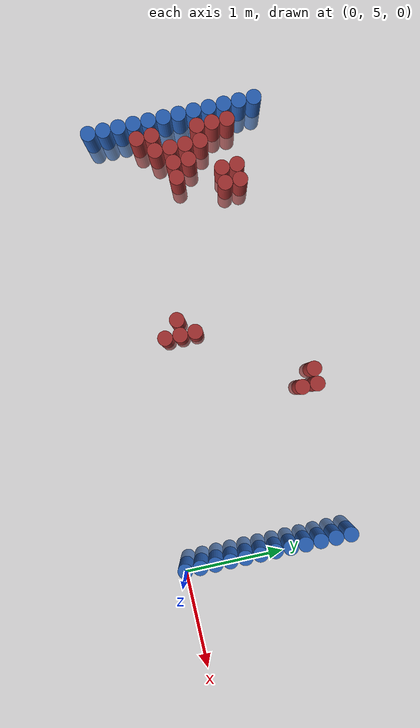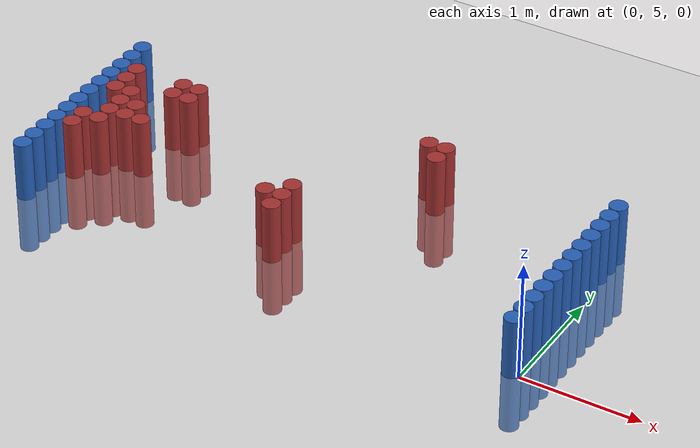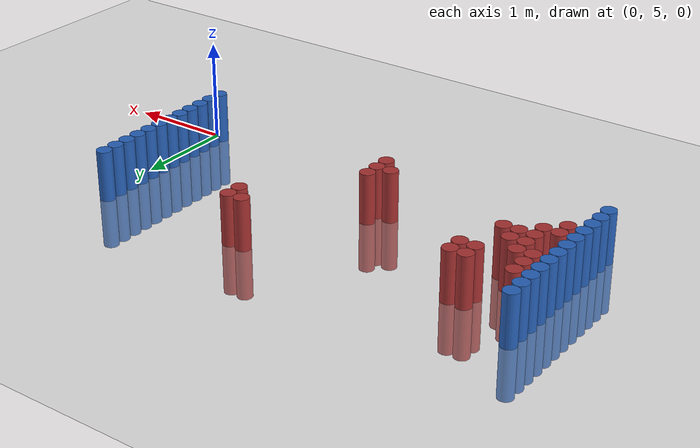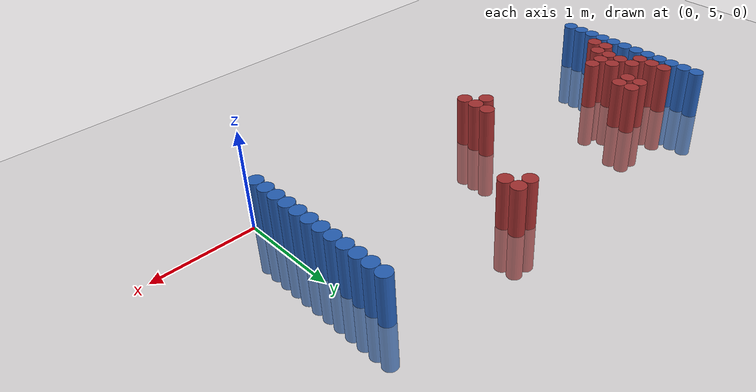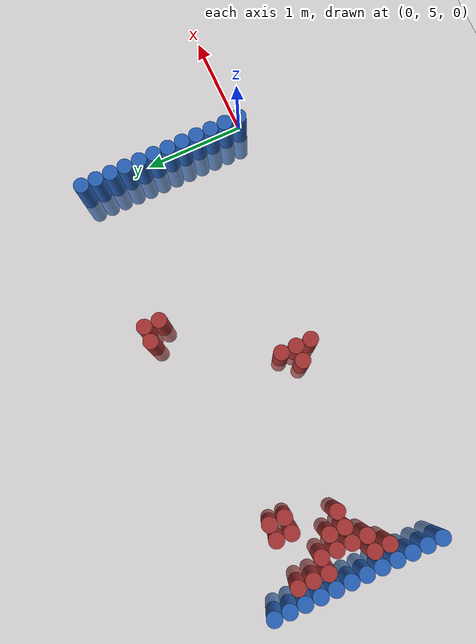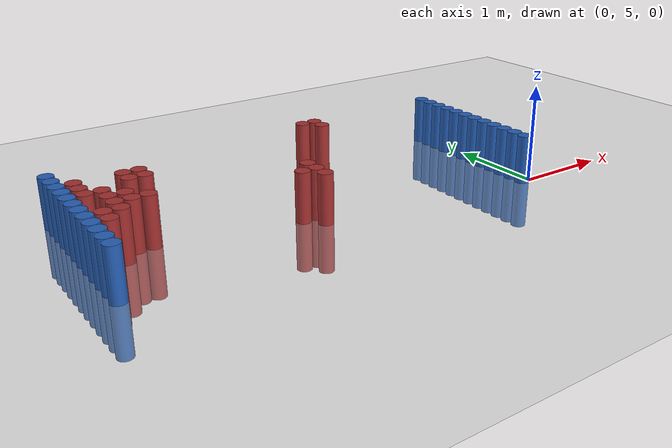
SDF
<sdf version="1.6">
 <world name="default">
  <model name="ground_plane">
   <static>1</static>
   <link name="link">
    <collision name="collision">
     <geometry><plane><normal>0 0 1</normal><size>100 100</size></plane></geometry>
     <surface><friction><ode><mu>100</mu><mu2>50</mu2></ode></friction></surface>
    </collision>
    <visual name="visual">
     <cast_shadows>0</cast_shadows>
     <geometry><plane><normal>0 0 1</normal><size>100 100</size></plane></geometry>
     <material>
      <script><uri>file://media/materials/scripts/gazebo.material</uri><name>Gazebo/Grey</name></script>
     </material>
    </visual>
   </link>
  </model>
  <model name="unit_cylinder_94">
   <static>1</static>
   <pose>-0.075000 5.025000 0.000000 0.000000 0.000000 0.000000</pose>
   <link name="link">
    <inertial>
     <mass>1</mass>
     <inertia><ixx>0.145833</ixx><ixy>0</ixy><ixz>0</ixz><iyy>0.145833</iyy><iyz>0</iyz><izz>0.125</izz></inertia>
    </inertial>
    <collision name="collision">
     <geometry><cylinder><radius>0.075000</radius><length>1</length></cylinder></geometry>
    </collision>
    <visual name="visual">
     <geometry><cylinder><radius>0.075000</radius><length>1</length></cylinder></geometry>
     <material>
      <ambient>0.152000 0.379000 0.720000 1</ambient>
      <diffuse>0.152000 0.379000 0.720000 1</diffuse>
     </material>
     <material>
      <script><name>Gazebo/Grey</name><uri>file://media/materials/scripts/gazebo.material</uri></script>
     </material>
    </visual>
   </link>
  </model>
  <model name="unit_cylinder_95">
   <static>1</static>
   <pose>-4.425000 5.025000 0.000000 0.000000 0.000000 0.000000</pose>
   <link name="link">
    <inertial>
     <mass>1</mass>
     <inertia><ixx>0.145833</ixx><ixy>0</ixy><ixz>0</ixz><iyy>0.145833</iyy><iyz>0</iyz><izz>0.125</izz></inertia>
    </inertial>
    <collision name="collision">
     <geometry><cylinder><radius>0.075000</radius><length>1</length></cylinder></geometry>
    </collision>
    <visual name="visual">
     <geometry><cylinder><radius>0.075000</radius><length>1</length></cylinder></geometry>
     <material>
      <ambient>0.152000 0.379000 0.720000 1</ambient>
      <diffuse>0.152000 0.379000 0.720000 1</diffuse>
     </material>
     <material>
      <script><name>Gazebo/Grey</name><uri>file://media/materials/scripts/gazebo.material</uri></script>
     </material>
    </visual>
   </link>
  </model>
  <model name="unit_cylinder_96">
   <static>1</static>
   <pose>-4.425000 5.175000 0.000000 0.000000 0.000000 0.000000</pose>
   <link name="link">
    <inertial>
     <mass>1</mass>
     <inertia><ixx>0.145833</ixx><ixy>0</ixy><ixz>0</ixz><iyy>0.145833</iyy><iyz>0</iyz><izz>0.125</izz></inertia>
    </inertial>
    <collision name="collision">
     <geometry><cylinder><radius>0.075000</radius><length>1</length></cylinder></geometry>
    </collision>
    <visual name="visual">
     <geometry><cylinder><radius>0.075000</radius><length>1</length></cylinder></geometry>
     <material>
      <ambient>0.152000 0.379000 0.720000 1</ambient>
      <diffuse>0.152000 0.379000 0.720000 1</diffuse>
     </material>
     <material>
      <script><name>Gazebo/Grey</name><uri>file://media/materials/scripts/gazebo.material</uri></script>
     </material>
    </visual>
   </link>
  </model>
  <model name="unit_cylinder_97">
   <static>1</static>
   <pose>-4.425000 5.325000 0.000000 0.000000 0.000000 0.000000</pose>
   <link name="link">
    <inertial>
     <mass>1</mass>
     <inertia><ixx>0.145833</ixx><ixy>0</ixy><ixz>0</ixz><iyy>0.145833</iyy><iyz>0</iyz><izz>0.125</izz></inertia>
    </inertial>
    <collision name="collision">
     <geometry><cylinder><radius>0.075000</radius><length>1</length></cylinder></geometry>
    </collision>
    <visual name="visual">
     <geometry><cylinder><radius>0.075000</radius><length>1</length></cylinder></geometry>
     <material>
      <ambient>0.152000 0.379000 0.720000 1</ambient>
      <diffuse>0.152000 0.379000 0.720000 1</diffuse>
     </material>
     <material>
      <script><name>Gazebo/Grey</name><uri>file://media/materials/scripts/gazebo.material</uri></script>
     </material>
    </visual>
   </link>
  </model>
  <model name="unit_cylinder_98">
   <static>1</static>
   <pose>-4.425000 5.475000 0.000000 0.000000 0.000000 0.000000</pose>
   <link name="link">
    <inertial>
     <mass>1</mass>
     <inertia><ixx>0.145833</ixx><ixy>0</ixy><ixz>0</ixz><iyy>0.145833</iyy><iyz>0</iyz><izz>0.125</izz></inertia>
    </inertial>
    <collision name="collision">
     <geometry><cylinder><radius>0.075000</radius><length>1</length></cylinder></geometry>
    </collision>
    <visual name="visual">
     <geometry><cylinder><radius>0.075000</radius><length>1</length></cylinder></geometry>
     <material>
      <ambient>0.152000 0.379000 0.720000 1</ambient>
      <diffuse>0.152000 0.379000 0.720000 1</diffuse>
     </material>
     <material>
      <script><name>Gazebo/Grey</name><uri>file://media/materials/scripts/gazebo.material</uri></script>
     </material>
    </visual>
   </link>
  </model>
  <model name="unit_cylinder_99">
   <static>1</static>
   <pose>-4.425000 5.625000 0.000000 0.000000 0.000000 0.000000</pose>
   <link name="link">
    <inertial>
     <mass>1</mass>
     <inertia><ixx>0.145833</ixx><ixy>0</ixy><ixz>0</ixz><iyy>0.145833</iyy><iyz>0</iyz><izz>0.125</izz></inertia>
    </inertial>
    <collision name="collision">
     <geometry><cylinder><radius>0.075000</radius><length>1</length></cylinder></geometry>
    </collision>
    <visual name="visual">
     <geometry><cylinder><radius>0.075000</radius><length>1</length></cylinder></geometry>
     <material>
      <ambient>0.152000 0.379000 0.720000 1</ambient>
      <diffuse>0.152000 0.379000 0.720000 1</diffuse>
     </material>
     <material>
      <script><name>Gazebo/Grey</name><uri>file://media/materials/scripts/gazebo.material</uri></script>
     </material>
    </visual>
   </link>
  </model>
  <model name="unit_cylinder_100">
   <static>1</static>
   <pose>-4.425000 5.775000 0.000000 0.000000 0.000000 0.000000</pose>
   <link name="link">
    <inertial>
     <mass>1</mass>
     <inertia><ixx>0.145833</ixx><ixy>0</ixy><ixz>0</ixz><iyy>0.145833</iyy><iyz>0</iyz><izz>0.125</izz></inertia>
    </inertial>
    <collision name="collision">
     <geometry><cylinder><radius>0.075000</radius><length>1</length></cylinder></geometry>
    </collision>
    <visual name="visual">
     <geometry><cylinder><radius>0.075000</radius><length>1</length></cylinder></geometry>
     <material>
      <ambient>0.152000 0.379000 0.720000 1</ambient>
      <diffuse>0.152000 0.379000 0.720000 1</diffuse>
     </material>
     <material>
      <script><name>Gazebo/Grey</name><uri>file://media/materials/scripts/gazebo.material</uri></script>
     </material>
    </visual>
   </link>
  </model>
  <model name="unit_cylinder_101">
   <static>1</static>
   <pose>-4.425000 5.925000 0.000000 0.000000 0.000000 0.000000</pose>
   <link name="link">
    <inertial>
     <mass>1</mass>
     <inertia><ixx>0.145833</ixx><ixy>0</ixy><ixz>0</ixz><iyy>0.145833</iyy><iyz>0</iyz><izz>0.125</izz></inertia>
    </inertial>
    <collision name="collision">
     <geometry><cylinder><radius>0.075000</radius><length>1</length></cylinder></geometry>
    </collision>
    <visual name="visual">
     <geometry><cylinder><radius>0.075000</radius><length>1</length></cylinder></geometry>
     <material>
      <ambient>0.152000 0.379000 0.720000 1</ambient>
      <diffuse>0.152000 0.379000 0.720000 1</diffuse>
     </material>
     <material>
      <script><name>Gazebo/Grey</name><uri>file://media/materials/scripts/gazebo.material</uri></script>
     </material>
    </visual>
   </link>
  </model>
  <model name="unit_cylinder_102">
   <static>1</static>
   <pose>-4.425000 6.075000 0.000000 0.000000 0.000000 0.000000</pose>
   <link name="link">
    <inertial>
     <mass>1</mass>
     <inertia><ixx>0.145833</ixx><ixy>0</ixy><ixz>0</ixz><iyy>0.145833</iyy><iyz>0</iyz><izz>0.125</izz></inertia>
    </inertial>
    <collision name="collision">
     <geometry><cylinder><radius>0.075000</radius><length>1</length></cylinder></geometry>
    </collision>
    <visual name="visual">
     <geometry><cylinder><radius>0.075000</radius><length>1</length></cylinder></geometry>
     <material>
      <ambient>0.152000 0.379000 0.720000 1</ambient>
      <diffuse>0.152000 0.379000 0.720000 1</diffuse>
     </material>
     <material>
      <script><name>Gazebo/Grey</name><uri>file://media/materials/scripts/gazebo.material</uri></script>
     </material>
    </visual>
   </link>
  </model>
  <model name="unit_cylinder_103">
   <static>1</static>
   <pose>-4.425000 6.225000 0.000000 0.000000 0.000000 0.000000</pose>
   <link name="link">
    <inertial>
     <mass>1</mass>
     <inertia><ixx>0.145833</ixx><ixy>0</ixy><ixz>0</ixz><iyy>0.145833</iyy><iyz>0</iyz><izz>0.125</izz></inertia>
    </inertial>
    <collision name="collision">
     <geometry><cylinder><radius>0.075000</radius><length>1</length></cylinder></geometry>
    </collision>
    <visual name="visual">
     <geometry><cylinder><radius>0.075000</radius><length>1</length></cylinder></geometry>
     <material>
      <ambient>0.152000 0.379000 0.720000 1</ambient>
      <diffuse>0.152000 0.379000 0.720000 1</diffuse>
     </material>
     <material>
      <script><name>Gazebo/Grey</name><uri>file://media/materials/scripts/gazebo.material</uri></script>
     </material>
    </visual>
   </link>
  </model>
  <model name="unit_cylinder_104">
   <static>1</static>
   <pose>-4.425000 6.375000 0.000000 0.000000 0.000000 0.000000</pose>
   <link name="link">
    <inertial>
     <mass>1</mass>
     <inertia><ixx>0.145833</ixx><ixy>0</ixy><ixz>0</ixz><iyy>0.145833</iyy><iyz>0</iyz><izz>0.125</izz></inertia>
    </inertial>
    <collision name="collision">
     <geometry><cylinder><radius>0.075000</radius><length>1</length></cylinder></geometry>
    </collision>
    <visual name="visual">
     <geometry><cylinder><radius>0.075000</radius><length>1</length></cylinder></geometry>
     <material>
      <ambient>0.152000 0.379000 0.720000 1</ambient>
      <diffuse>0.152000 0.379000 0.720000 1</diffuse>
     </material>
     <material>
      <script><name>Gazebo/Grey</name><uri>file://media/materials/scripts/gazebo.material</uri></script>
     </material>
    </visual>
   </link>
  </model>
  <model name="unit_cylinder_105">
   <static>1</static>
   <pose>-4.425000 6.525000 0.000000 0.000000 0.000000 0.000000</pose>
   <link name="link">
    <inertial>
     <mass>1</mass>
     <inertia><ixx>0.145833</ixx><ixy>0</ixy><ixz>0</ixz><iyy>0.145833</iyy><iyz>0</iyz><izz>0.125</izz></inertia>
    </inertial>
    <collision name="collision">
     <geometry><cylinder><radius>0.075000</radius><length>1</length></cylinder></geometry>
    </collision>
    <visual name="visual">
     <geometry><cylinder><radius>0.075000</radius><length>1</length></cylinder></geometry>
     <material>
      <ambient>0.152000 0.379000 0.720000 1</ambient>
      <diffuse>0.152000 0.379000 0.720000 1</diffuse>
     </material>
     <material>
      <script><name>Gazebo/Grey</name><uri>file://media/materials/scripts/gazebo.material</uri></script>
     </material>
    </visual>
   </link>
  </model>
  <model name="unit_cylinder_106">
   <static>1</static>
   <pose>-4.425000 6.675000 0.000000 0.000000 0.000000 0.000000</pose>
   <link name="link">
    <inertial>
     <mass>1</mass>
     <inertia><ixx>0.145833</ixx><ixy>0</ixy><ixz>0</ixz><iyy>0.145833</iyy><iyz>0</iyz><izz>0.125</izz></inertia>
    </inertial>
    <collision name="collision">
     <geometry><cylinder><radius>0.075000</radius><length>1</length></cylinder></geometry>
    </collision>
    <visual name="visual">
     <geometry><cylinder><radius>0.075000</radius><length>1</length></cylinder></geometry>
     <material>
      <ambient>0.152000 0.379000 0.720000 1</ambient>
      <diffuse>0.152000 0.379000 0.720000 1</diffuse>
     </material>
     <material>
      <script><name>Gazebo/Grey</name><uri>file://media/materials/scripts/gazebo.material</uri></script>
     </material>
    </visual>
   </link>
  </model>
  <model name="unit_cylinder_126">
   <static>1</static>
   <pose>-4.275000 5.475000 0.000000 0.000000 0.000000 0.000000</pose>
   <link name="link">
    <inertial>
     <mass>1</mass>
     <inertia><ixx>0.145833</ixx><ixy>0</ixy><ixz>0</ixz><iyy>0.145833</iyy><iyz>0</iyz><izz>0.125</izz></inertia>
    </inertial>
    <collision name="collision">
     <geometry><cylinder><radius>0.075000</radius><length>1</length></cylinder></geometry>
    </collision>
    <visual name="visual">
     <geometry><cylinder><radius>0.075000</radius><length>1</length></cylinder></geometry>
     <material>
      <ambient>0.648000 0.192000 0.192000 1</ambient>
      <diffuse>0.648000 0.192000 0.192000 1</diffuse>
     </material>
     <material>
      <script><name>Gazebo/Grey</name><uri>file://media/materials/scripts/gazebo.material</uri></script>
     </material>
    </visual>
   </link>
  </model>
  <model name="unit_cylinder_127">
   <static>1</static>
   <pose>-4.275000 5.625000 0.000000 0.000000 0.000000 0.000000</pose>
   <link name="link">
    <inertial>
     <mass>1</mass>
     <inertia><ixx>0.145833</ixx><ixy>0</ixy><ixz>0</ixz><iyy>0.145833</iyy><iyz>0</iyz><izz>0.125</izz></inertia>
    </inertial>
    <collision name="collision">
     <geometry><cylinder><radius>0.075000</radius><length>1</length></cylinder></geometry>
    </collision>
    <visual name="visual">
     <geometry><cylinder><radius>0.075000</radius><length>1</length></cylinder></geometry>
     <material>
      <ambient>0.648000 0.192000 0.192000 1</ambient>
      <diffuse>0.648000 0.192000 0.192000 1</diffuse>
     </material>
     <material>
      <script><name>Gazebo/Grey</name><uri>file://media/materials/scripts/gazebo.material</uri></script>
     </material>
    </visual>
   </link>
  </model>
  <model name="unit_cylinder_128">
   <static>1</static>
   <pose>-4.275000 6.075000 0.000000 0.000000 0.000000 0.000000</pose>
   <link name="link">
    <inertial>
     <mass>1</mass>
     <inertia><ixx>0.145833</ixx><ixy>0</ixy><ixz>0</ixz><iyy>0.145833</iyy><iyz>0</iyz><izz>0.125</izz></inertia>
    </inertial>
    <collision name="collision">
     <geometry><cylinder><radius>0.075000</radius><length>1</length></cylinder></geometry>
    </collision>
    <visual name="visual">
     <geometry><cylinder><radius>0.075000</radius><length>1</length></cylinder></geometry>
     <material>
      <ambient>0.648000 0.192000 0.192000 1</ambient>
      <diffuse>0.648000 0.192000 0.192000 1</diffuse>
     </material>
     <material>
      <script><name>Gazebo/Grey</name><uri>file://media/materials/scripts/gazebo.material</uri></script>
     </material>
    </visual>
   </link>
  </model>
  <model name="unit_cylinder_129">
   <static>1</static>
   <pose>-4.275000 6.225000 0.000000 0.000000 0.000000 0.000000</pose>
   <link name="link">
    <inertial>
     <mass>1</mass>
     <inertia><ixx>0.145833</ixx><ixy>0</ixy><ixz>0</ixz><iyy>0.145833</iyy><iyz>0</iyz><izz>0.125</izz></inertia>
    </inertial>
    <collision name="collision">
     <geometry><cylinder><radius>0.075000</radius><length>1</length></cylinder></geometry>
    </collision>
    <visual name="visual">
     <geometry><cylinder><radius>0.075000</radius><length>1</length></cylinder></geometry>
     <material>
      <ambient>0.648000 0.192000 0.192000 1</ambient>
      <diffuse>0.648000 0.192000 0.192000 1</diffuse>
     </material>
     <material>
      <script><name>Gazebo/Grey</name><uri>file://media/materials/scripts/gazebo.material</uri></script>
     </material>
    </visual>
   </link>
  </model>
  <model name="unit_cylinder_130">
   <static>1</static>
   <pose>-4.275000 6.375000 0.000000 0.000000 0.000000 0.000000</pose>
   <link name="link">
    <inertial>
     <mass>1</mass>
     <inertia><ixx>0.145833</ixx><ixy>0</ixy><ixz>0</ixz><iyy>0.145833</iyy><iyz>0</iyz><izz>0.125</izz></inertia>
    </inertial>
    <collision name="collision">
     <geometry><cylinder><radius>0.075000</radius><length>1</length></cylinder></geometry>
    </collision>
    <visual name="visual">
     <geometry><cylinder><radius>0.075000</radius><length>1</length></cylinder></geometry>
     <material>
      <ambient>0.648000 0.192000 0.192000 1</ambient>
      <diffuse>0.648000 0.192000 0.192000 1</diffuse>
     </material>
     <material>
      <script><name>Gazebo/Grey</name><uri>file://media/materials/scripts/gazebo.material</uri></script>
     </material>
    </visual>
   </link>
  </model>
  <model name="unit_cylinder_144">
   <static>1</static>
   <pose>-4.125000 5.625000 0.000000 0.000000 0.000000 0.000000</pose>
   <link name="link">
    <inertial>
     <mass>1</mass>
     <inertia><ixx>0.145833</ixx><ixy>0</ixy><ixz>0</ixz><iyy>0.145833</iyy><iyz>0</iyz><izz>0.125</izz></inertia>
    </inertial>
    <collision name="collision">
     <geometry><cylinder><radius>0.075000</radius><length>1</length></cylinder></geometry>
    </collision>
    <visual name="visual">
     <geometry><cylinder><radius>0.075000</radius><length>1</length></cylinder></geometry>
     <material>
      <ambient>0.648000 0.192000 0.192000 1</ambient>
      <diffuse>0.648000 0.192000 0.192000 1</diffuse>
     </material>
     <material>
      <script><name>Gazebo/Grey</name><uri>file://media/materials/scripts/gazebo.material</uri></script>
     </material>
    </visual>
   </link>
  </model>
  <model name="unit_cylinder_145">
   <static>1</static>
   <pose>-4.125000 5.775000 0.000000 0.000000 0.000000 0.000000</pose>
   <link name="link">
    <inertial>
     <mass>1</mass>
     <inertia><ixx>0.145833</ixx><ixy>0</ixy><ixz>0</ixz><iyy>0.145833</iyy><iyz>0</iyz><izz>0.125</izz></inertia>
    </inertial>
    <collision name="collision">
     <geometry><cylinder><radius>0.075000</radius><length>1</length></cylinder></geometry>
    </collision>
    <visual name="visual">
     <geometry><cylinder><radius>0.075000</radius><length>1</length></cylinder></geometry>
     <material>
      <ambient>0.648000 0.192000 0.192000 1</ambient>
      <diffuse>0.648000 0.192000 0.192000 1</diffuse>
     </material>
     <material>
      <script><name>Gazebo/Grey</name><uri>file://media/materials/scripts/gazebo.material</uri></script>
     </material>
    </visual>
   </link>
  </model>
  <model name="unit_cylinder_146">
   <static>1</static>
   <pose>-4.125000 5.925000 0.000000 0.000000 0.000000 0.000000</pose>
   <link name="link">
    <inertial>
     <mass>1</mass>
     <inertia><ixx>0.145833</ixx><ixy>0</ixy><ixz>0</ixz><iyy>0.145833</iyy><iyz>0</iyz><izz>0.125</izz></inertia>
    </inertial>
    <collision name="collision">
     <geometry><cylinder><radius>0.075000</radius><length>1</length></cylinder></geometry>
    </collision>
    <visual name="visual">
     <geometry><cylinder><radius>0.075000</radius><length>1</length></cylinder></geometry>
     <material>
      <ambient>0.648000 0.192000 0.192000 1</ambient>
      <diffuse>0.648000 0.192000 0.192000 1</diffuse>
     </material>
     <material>
      <script><name>Gazebo/Grey</name><uri>file://media/materials/scripts/gazebo.material</uri></script>
     </material>
    </visual>
   </link>
  </model>
  <model name="unit_cylinder_147">
   <static>1</static>
   <pose>-4.125000 6.075000 0.000000 0.000000 0.000000 0.000000</pose>
   <link name="link">
    <inertial>
     <mass>1</mass>
     <inertia><ixx>0.145833</ixx><ixy>0</ixy><ixz>0</ixz><iyy>0.145833</iyy><iyz>0</iyz><izz>0.125</izz></inertia>
    </inertial>
    <collision name="collision">
     <geometry><cylinder><radius>0.075000</radius><length>1</length></cylinder></geometry>
    </collision>
    <visual name="visual">
     <geometry><cylinder><radius>0.075000</radius><length>1</length></cylinder></geometry>
     <material>
      <ambient>0.648000 0.192000 0.192000 1</ambient>
      <diffuse>0.648000 0.192000 0.192000 1</diffuse>
     </material>
     <material>
      <script><name>Gazebo/Grey</name><uri>file://media/materials/scripts/gazebo.material</uri></script>
     </material>
    </visual>
   </link>
  </model>
  <model name="unit_cylinder_149">
   <static>1</static>
   <pose>-3.975000 5.775000 0.000000 0.000000 0.000000 0.000000</pose>
   <link name="link">
    <inertial>
     <mass>1</mass>
     <inertia><ixx>0.145833</ixx><ixy>0</ixy><ixz>0</ixz><iyy>0.145833</iyy><iyz>0</iyz><izz>0.125</izz></inertia>
    </inertial>
    <collision name="collision">
     <geometry><cylinder><radius>0.075000</radius><length>1</length></cylinder></geometry>
    </collision>
    <visual name="visual">
     <geometry><cylinder><radius>0.075000</radius><length>1</length></cylinder></geometry>
     <material>
      <ambient>0.648000 0.192000 0.192000 1</ambient>
      <diffuse>0.648000 0.192000 0.192000 1</diffuse>
     </material>
     <material>
      <script><name>Gazebo/Grey</name><uri>file://media/materials/scripts/gazebo.material</uri></script>
     </material>
    </visual>
   </link>
  </model>
  <model name="unit_cylinder_150">
   <static>1</static>
   <pose>-3.975000 5.925000 0.000000 0.000000 0.000000 0.000000</pose>
   <link name="link">
    <inertial>
     <mass>1</mass>
     <inertia><ixx>0.145833</ixx><ixy>0</ixy><ixz>0</ixz><iyy>0.145833</iyy><iyz>0</iyz><izz>0.125</izz></inertia>
    </inertial>
    <collision name="collision">
     <geometry><cylinder><radius>0.075000</radius><length>1</length></cylinder></geometry>
    </collision>
    <visual name="visual">
     <geometry><cylinder><radius>0.075000</radius><length>1</length></cylinder></geometry>
     <material>
      <ambient>0.648000 0.192000 0.192000 1</ambient>
      <diffuse>0.648000 0.192000 0.192000 1</diffuse>
     </material>
     <material>
      <script><name>Gazebo/Grey</name><uri>file://media/materials/scripts/gazebo.material</uri></script>
     </material>
    </visual>
   </link>
  </model>
  <model name="unit_cylinder_151">
   <static>1</static>
   <pose>-3.825000 5.775000 0.000000 0.000000 0.000000 0.000000</pose>
   <link name="link">
    <inertial>
     <mass>1</mass>
     <inertia><ixx>0.145833</ixx><ixy>0</ixy><ixz>0</ixz><iyy>0.145833</iyy><iyz>0</iyz><izz>0.125</izz></inertia>
    </inertial>
    <collision name="collision">
     <geometry><cylinder><radius>0.075000</radius><length>1</length></cylinder></geometry>
    </collision>
    <visual name="visual">
     <geometry><cylinder><radius>0.075000</radius><length>1</length></cylinder></geometry>
     <material>
      <ambient>0.648000 0.192000 0.192000 1</ambient>
      <diffuse>0.648000 0.192000 0.192000 1</diffuse>
     </material>
     <material>
      <script><name>Gazebo/Grey</name><uri>file://media/materials/scripts/gazebo.material</uri></script>
     </material>
    </visual>
   </link>
  </model>
  <model name="unit_cylinder_152">
   <static>1</static>
   <pose>-3.825000 6.225000 0.000000 0.000000 0.000000 0.000000</pose>
   <link name="link">
    <inertial>
     <mass>1</mass>
     <inertia><ixx>0.145833</ixx><ixy>0</ixy><ixz>0</ixz><iyy>0.145833</iyy><iyz>0</iyz><izz>0.125</izz></inertia>
    </inertial>
    <collision name="collision">
     <geometry><cylinder><radius>0.075000</radius><length>1</length></cylinder></geometry>
    </collision>
    <visual name="visual">
     <geometry><cylinder><radius>0.075000</radius><length>1</length></cylinder></geometry>
     <material>
      <ambient>0.648000 0.192000 0.192000 1</ambient>
      <diffuse>0.648000 0.192000 0.192000 1</diffuse>
     </material>
     <material>
      <script><name>Gazebo/Grey</name><uri>file://media/materials/scripts/gazebo.material</uri></script>
     </material>
    </visual>
   </link>
  </model>
  <model name="unit_cylinder_153">
   <static>1</static>
   <pose>-3.825000 6.375000 0.000000 0.000000 0.000000 0.000000</pose>
   <link name="link">
    <inertial>
     <mass>1</mass>
     <inertia><ixx>0.145833</ixx><ixy>0</ixy><ixz>0</ixz><iyy>0.145833</iyy><iyz>0</iyz><izz>0.125</izz></inertia>
    </inertial>
    <collision name="collision">
     <geometry><cylinder><radius>0.075000</radius><length>1</length></cylinder></geometry>
    </collision>
    <visual name="visual">
     <geometry><cylinder><radius>0.075000</radius><length>1</length></cylinder></geometry>
     <material>
      <ambient>0.648000 0.192000 0.192000 1</ambient>
      <diffuse>0.648000 0.192000 0.192000 1</diffuse>
     </material>
     <material>
      <script><name>Gazebo/Grey</name><uri>file://media/materials/scripts/gazebo.material</uri></script>
     </material>
    </visual>
   </link>
  </model>
  <model name="unit_cylinder_154">
   <static>1</static>
   <pose>-3.675000 6.225000 0.000000 0.000000 0.000000 0.000000</pose>
   <link name="link">
    <inertial>
     <mass>1</mass>
     <inertia><ixx>0.145833</ixx><ixy>0</ixy><ixz>0</ixz><iyy>0.145833</iyy><iyz>0</iyz><izz>0.125</izz></inertia>
    </inertial>
    <collision name="collision">
     <geometry><cylinder><radius>0.075000</radius><length>1</length></cylinder></geometry>
    </collision>
    <visual name="visual">
     <geometry><cylinder><radius>0.075000</radius><length>1</length></cylinder></geometry>
     <material>
      <ambient>0.648000 0.192000 0.192000 1</ambient>
      <diffuse>0.648000 0.192000 0.192000 1</diffuse>
     </material>
     <material>
      <script><name>Gazebo/Grey</name><uri>file://media/materials/scripts/gazebo.material</uri></script>
     </material>
    </visual>
   </link>
  </model>
  <model name="unit_cylinder_155">
   <static>1</static>
   <pose>-3.675000 6.375000 0.000000 0.000000 0.000000 0.000000</pose>
   <link name="link">
    <inertial>
     <mass>1</mass>
     <inertia><ixx>0.145833</ixx><ixy>0</ixy><ixz>0</ixz><iyy>0.145833</iyy><iyz>0</iyz><izz>0.125</izz></inertia>
    </inertial>
    <collision name="collision">
     <geometry><cylinder><radius>0.075000</radius><length>1</length></cylinder></geometry>
    </collision>
    <visual name="visual">
     <geometry><cylinder><radius>0.075000</radius><length>1</length></cylinder></geometry>
     <material>
      <ambient>0.648000 0.192000 0.192000 1</ambient>
      <diffuse>0.648000 0.192000 0.192000 1</diffuse>
     </material>
     <material>
      <script><name>Gazebo/Grey</name><uri>file://media/materials/scripts/gazebo.material</uri></script>
     </material>
    </visual>
   </link>
  </model>
  <model name="unit_cylinder_162">
   <static>1</static>
   <pose>-2.475000 5.475000 0.000000 0.000000 0.000000 0.000000</pose>
   <link name="link">
    <inertial>
     <mass>1</mass>
     <inertia><ixx>0.145833</ixx><ixy>0</ixy><ixz>0</ixz><iyy>0.145833</iyy><iyz>0</iyz><izz>0.125</izz></inertia>
    </inertial>
    <collision name="collision">
     <geometry><cylinder><radius>0.075000</radius><length>1</length></cylinder></geometry>
    </collision>
    <visual name="visual">
     <geometry><cylinder><radius>0.075000</radius><length>1</length></cylinder></geometry>
     <material>
      <ambient>0.648000 0.192000 0.192000 1</ambient>
      <diffuse>0.648000 0.192000 0.192000 1</diffuse>
     </material>
     <material>
      <script><name>Gazebo/Grey</name><uri>file://media/materials/scripts/gazebo.material</uri></script>
     </material>
    </visual>
   </link>
  </model>
  <model name="unit_cylinder_163">
   <static>1</static>
   <pose>-2.325000 5.325000 0.000000 0.000000 0.000000 0.000000</pose>
   <link name="link">
    <inertial>
     <mass>1</mass>
     <inertia><ixx>0.145833</ixx><ixy>0</ixy><ixz>0</ixz><iyy>0.145833</iyy><iyz>0</iyz><izz>0.125</izz></inertia>
    </inertial>
    <collision name="collision">
     <geometry><cylinder><radius>0.075000</radius><length>1</length></cylinder></geometry>
    </collision>
    <visual name="visual">
     <geometry><cylinder><radius>0.075000</radius><length>1</length></cylinder></geometry>
     <material>
      <ambient>0.648000 0.192000 0.192000 1</ambient>
      <diffuse>0.648000 0.192000 0.192000 1</diffuse>
     </material>
     <material>
      <script><name>Gazebo/Grey</name><uri>file://media/materials/scripts/gazebo.material</uri></script>
     </material>
    </visual>
   </link>
  </model>
  <model name="unit_cylinder_164">
   <static>1</static>
   <pose>-2.325000 5.475000 0.000000 0.000000 0.000000 0.000000</pose>
   <link name="link">
    <inertial>
     <mass>1</mass>
     <inertia><ixx>0.145833</ixx><ixy>0</ixy><ixz>0</ixz><iyy>0.145833</iyy><iyz>0</iyz><izz>0.125</izz></inertia>
    </inertial>
    <collision name="collision">
     <geometry><cylinder><radius>0.075000</radius><length>1</length></cylinder></geometry>
    </collision>
    <visual name="visual">
     <geometry><cylinder><radius>0.075000</radius><length>1</length></cylinder></geometry>
     <material>
      <ambient>0.648000 0.192000 0.192000 1</ambient>
      <diffuse>0.648000 0.192000 0.192000 1</diffuse>
     </material>
     <material>
      <script><name>Gazebo/Grey</name><uri>file://media/materials/scripts/gazebo.material</uri></script>
     </material>
    </visual>
   </link>
  </model>
  <model name="unit_cylinder_165">
   <static>1</static>
   <pose>-2.325000 5.625000 0.000000 0.000000 0.000000 0.000000</pose>
   <link name="link">
    <inertial>
     <mass>1</mass>
     <inertia><ixx>0.145833</ixx><ixy>0</ixy><ixz>0</ixz><iyy>0.145833</iyy><iyz>0</iyz><izz>0.125</izz></inertia>
    </inertial>
    <collision name="collision">
     <geometry><cylinder><radius>0.075000</radius><length>1</length></cylinder></geometry>
    </collision>
    <visual name="visual">
     <geometry><cylinder><radius>0.075000</radius><length>1</length></cylinder></geometry>
     <material>
      <ambient>0.648000 0.192000 0.192000 1</ambient>
      <diffuse>0.648000 0.192000 0.192000 1</diffuse>
     </material>
     <material>
      <script><name>Gazebo/Grey</name><uri>file://media/materials/scripts/gazebo.material</uri></script>
     </material>
    </visual>
   </link>
  </model>
  <model name="unit_cylinder_175">
   <static>1</static>
   <pose>-1.725000 6.675000 0.000000 0.000000 0.000000 0.000000</pose>
   <link name="link">
    <inertial>
     <mass>1</mass>
     <inertia><ixx>0.145833</ixx><ixy>0</ixy><ixz>0</ixz><iyy>0.145833</iyy><iyz>0</iyz><izz>0.125</izz></inertia>
    </inertial>
    <collision name="collision">
     <geometry><cylinder><radius>0.075000</radius><length>1</length></cylinder></geometry>
    </collision>
    <visual name="visual">
     <geometry><cylinder><radius>0.075000</radius><length>1</length></cylinder></geometry>
     <material>
      <ambient>0.648000 0.192000 0.192000 1</ambient>
      <diffuse>0.648000 0.192000 0.192000 1</diffuse>
     </material>
     <material>
      <script><name>Gazebo/Grey</name><uri>file://media/materials/scripts/gazebo.material</uri></script>
     </material>
    </visual>
   </link>
  </model>
  <model name="unit_cylinder_180">
   <static>1</static>
   <pose>-1.575000 6.525000 0.000000 0.000000 0.000000 0.000000</pose>
   <link name="link">
    <inertial>
     <mass>1</mass>
     <inertia><ixx>0.145833</ixx><ixy>0</ixy><ixz>0</ixz><iyy>0.145833</iyy><iyz>0</iyz><izz>0.125</izz></inertia>
    </inertial>
    <collision name="collision">
     <geometry><cylinder><radius>0.075000</radius><length>1</length></cylinder></geometry>
    </collision>
    <visual name="visual">
     <geometry><cylinder><radius>0.075000</radius><length>1</length></cylinder></geometry>
     <material>
      <ambient>0.648000 0.192000 0.192000 1</ambient>
      <diffuse>0.648000 0.192000 0.192000 1</diffuse>
     </material>
     <material>
      <script><name>Gazebo/Grey</name><uri>file://media/materials/scripts/gazebo.material</uri></script>
     </material>
    </visual>
   </link>
  </model>
  <model name="unit_cylinder_181">
   <static>1</static>
   <pose>-1.575000 6.675000 0.000000 0.000000 0.000000 0.000000</pose>
   <link name="link">
    <inertial>
     <mass>1</mass>
     <inertia><ixx>0.145833</ixx><ixy>0</ixy><ixz>0</ixz><iyy>0.145833</iyy><iyz>0</iyz><izz>0.125</izz></inertia>
    </inertial>
    <collision name="collision">
     <geometry><cylinder><radius>0.075000</radius><length>1</length></cylinder></geometry>
    </collision>
    <visual name="visual">
     <geometry><cylinder><radius>0.075000</radius><length>1</length></cylinder></geometry>
     <material>
      <ambient>0.648000 0.192000 0.192000 1</ambient>
      <diffuse>0.648000 0.192000 0.192000 1</diffuse>
     </material>
     <material>
      <script><name>Gazebo/Grey</name><uri>file://media/materials/scripts/gazebo.material</uri></script>
     </material>
    </visual>
   </link>
  </model>
  <model name="unit_cylinder_206">
   <static>1</static>
   <pose>-0.075000 5.175000 0.000000 0.000000 0.000000 0.000000</pose>
   <link name="link">
    <inertial>
     <mass>1</mass>
     <inertia><ixx>0.145833</ixx><ixy>0</ixy><ixz>0</ixz><iyy>0.145833</iyy><iyz>0</iyz><izz>0.125</izz></inertia>
    </inertial>
    <collision name="collision">
     <geometry><cylinder><radius>0.075000</radius><length>1</length></cylinder></geometry>
    </collision>
    <visual name="visual">
     <geometry><cylinder><radius>0.075000</radius><length>1</length></cylinder></geometry>
     <material>
      <ambient>0.152000 0.379000 0.720000 1</ambient>
      <diffuse>0.152000 0.379000 0.720000 1</diffuse>
     </material>
     <material>
      <script><name>Gazebo/Grey</name><uri>file://media/materials/scripts/gazebo.material</uri></script>
     </material>
    </visual>
   </link>
  </model>
  <model name="unit_cylinder_207">
   <static>1</static>
   <pose>-0.075000 5.325000 0.000000 0.000000 0.000000 0.000000</pose>
   <link name="link">
    <inertial>
     <mass>1</mass>
     <inertia><ixx>0.145833</ixx><ixy>0</ixy><ixz>0</ixz><iyy>0.145833</iyy><iyz>0</iyz><izz>0.125</izz></inertia>
    </inertial>
    <collision name="collision">
     <geometry><cylinder><radius>0.075000</radius><length>1</length></cylinder></geometry>
    </collision>
    <visual name="visual">
     <geometry><cylinder><radius>0.075000</radius><length>1</length></cylinder></geometry>
     <material>
      <ambient>0.152000 0.379000 0.720000 1</ambient>
      <diffuse>0.152000 0.379000 0.720000 1</diffuse>
     </material>
     <material>
      <script><name>Gazebo/Grey</name><uri>file://media/materials/scripts/gazebo.material</uri></script>
     </material>
    </visual>
   </link>
  </model>
  <model name="unit_cylinder_208">
   <static>1</static>
   <pose>-0.075000 5.475000 0.000000 0.000000 0.000000 0.000000</pose>
   <link name="link">
    <inertial>
     <mass>1</mass>
     <inertia><ixx>0.145833</ixx><ixy>0</ixy><ixz>0</ixz><iyy>0.145833</iyy><iyz>0</iyz><izz>0.125</izz></inertia>
    </inertial>
    <collision name="collision">
     <geometry><cylinder><radius>0.075000</radius><length>1</length></cylinder></geometry>
    </collision>
    <visual name="visual">
     <geometry><cylinder><radius>0.075000</radius><length>1</length></cylinder></geometry>
     <material>
      <ambient>0.152000 0.379000 0.720000 1</ambient>
      <diffuse>0.152000 0.379000 0.720000 1</diffuse>
     </material>
     <material>
      <script><name>Gazebo/Grey</name><uri>file://media/materials/scripts/gazebo.material</uri></script>
     </material>
    </visual>
   </link>
  </model>
  <model name="unit_cylinder_209">
   <static>1</static>
   <pose>-0.075000 5.625000 0.000000 0.000000 0.000000 0.000000</pose>
   <link name="link">
    <inertial>
     <mass>1</mass>
     <inertia><ixx>0.145833</ixx><ixy>0</ixy><ixz>0</ixz><iyy>0.145833</iyy><iyz>0</iyz><izz>0.125</izz></inertia>
    </inertial>
    <collision name="collision">
     <geometry><cylinder><radius>0.075000</radius><length>1</length></cylinder></geometry>
    </collision>
    <visual name="visual">
     <geometry><cylinder><radius>0.075000</radius><length>1</length></cylinder></geometry>
     <material>
      <ambient>0.152000 0.379000 0.720000 1</ambient>
      <diffuse>0.152000 0.379000 0.720000 1</diffuse>
     </material>
     <material>
      <script><name>Gazebo/Grey</name><uri>file://media/materials/scripts/gazebo.material</uri></script>
     </material>
    </visual>
   </link>
  </model>
  <model name="unit_cylinder_210">
   <static>1</static>
   <pose>-0.075000 5.775000 0.000000 0.000000 0.000000 0.000000</pose>
   <link name="link">
    <inertial>
     <mass>1</mass>
     <inertia><ixx>0.145833</ixx><ixy>0</ixy><ixz>0</ixz><iyy>0.145833</iyy><iyz>0</iyz><izz>0.125</izz></inertia>
    </inertial>
    <collision name="collision">
     <geometry><cylinder><radius>0.075000</radius><length>1</length></cylinder></geometry>
    </collision>
    <visual name="visual">
     <geometry><cylinder><radius>0.075000</radius><length>1</length></cylinder></geometry>
     <material>
      <ambient>0.152000 0.379000 0.720000 1</ambient>
      <diffuse>0.152000 0.379000 0.720000 1</diffuse>
     </material>
     <material>
      <script><name>Gazebo/Grey</name><uri>file://media/materials/scripts/gazebo.material</uri></script>
     </material>
    </visual>
   </link>
  </model>
  <model name="unit_cylinder_211">
   <static>1</static>
   <pose>-0.075000 5.925000 0.000000 0.000000 0.000000 0.000000</pose>
   <link name="link">
    <inertial>
     <mass>1</mass>
     <inertia><ixx>0.145833</ixx><ixy>0</ixy><ixz>0</ixz><iyy>0.145833</iyy><iyz>0</iyz><izz>0.125</izz></inertia>
    </inertial>
    <collision name="collision">
     <geometry><cylinder><radius>0.075000</radius><length>1</length></cylinder></geometry>
    </collision>
    <visual name="visual">
     <geometry><cylinder><radius>0.075000</radius><length>1</length></cylinder></geometry>
     <material>
      <ambient>0.152000 0.379000 0.720000 1</ambient>
      <diffuse>0.152000 0.379000 0.720000 1</diffuse>
     </material>
     <material>
      <script><name>Gazebo/Grey</name><uri>file://media/materials/scripts/gazebo.material</uri></script>
     </material>
    </visual>
   </link>
  </model>
  <model name="unit_cylinder_212">
   <static>1</static>
   <pose>-0.075000 6.075000 0.000000 0.000000 0.000000 0.000000</pose>
   <link name="link">
    <inertial>
     <mass>1</mass>
     <inertia><ixx>0.145833</ixx><ixy>0</ixy><ixz>0</ixz><iyy>0.145833</iyy><iyz>0</iyz><izz>0.125</izz></inertia>
    </inertial>
    <collision name="collision">
     <geometry><cylinder><radius>0.075000</radius><length>1</length></cylinder></geometry>
    </collision>
    <visual name="visual">
     <geometry><cylinder><radius>0.075000</radius><length>1</length></cylinder></geometry>
     <material>
      <ambient>0.152000 0.379000 0.720000 1</ambient>
      <diffuse>0.152000 0.379000 0.720000 1</diffuse>
     </material>
     <material>
      <script><name>Gazebo/Grey</name><uri>file://media/materials/scripts/gazebo.material</uri></script>
     </material>
    </visual>
   </link>
  </model>
  <model name="unit_cylinder_213">
   <static>1</static>
   <pose>-0.075000 6.225000 0.000000 0.000000 0.000000 0.000000</pose>
   <link name="link">
    <inertial>
     <mass>1</mass>
     <inertia><ixx>0.145833</ixx><ixy>0</ixy><ixz>0</ixz><iyy>0.145833</iyy><iyz>0</iyz><izz>0.125</izz></inertia>
    </inertial>
    <collision name="collision">
     <geometry><cylinder><radius>0.075000</radius><length>1</length></cylinder></geometry>
    </collision>
    <visual name="visual">
     <geometry><cylinder><radius>0.075000</radius><length>1</length></cylinder></geometry>
     <material>
      <ambient>0.152000 0.379000 0.720000 1</ambient>
      <diffuse>0.152000 0.379000 0.720000 1</diffuse>
     </material>
     <material>
      <script><name>Gazebo/Grey</name><uri>file://media/materials/scripts/gazebo.material</uri></script>
     </material>
    </visual>
   </link>
  </model>
  <model name="unit_cylinder_214">
   <static>1</static>
   <pose>-0.075000 6.375000 0.000000 0.000000 0.000000 0.000000</pose>
   <link name="link">
    <inertial>
     <mass>1</mass>
     <inertia><ixx>0.145833</ixx><ixy>0</ixy><ixz>0</ixz><iyy>0.145833</iyy><iyz>0</iyz><izz>0.125</izz></inertia>
    </inertial>
    <collision name="collision">
     <geometry><cylinder><radius>0.075000</radius><length>1</length></cylinder></geometry>
    </collision>
    <visual name="visual">
     <geometry><cylinder><radius>0.075000</radius><length>1</length></cylinder></geometry>
     <material>
      <ambient>0.152000 0.379000 0.720000 1</ambient>
      <diffuse>0.152000 0.379000 0.720000 1</diffuse>
     </material>
     <material>
      <script><name>Gazebo/Grey</name><uri>file://media/materials/scripts/gazebo.material</uri></script>
     </material>
    </visual>
   </link>
  </model>
  <model name="unit_cylinder_215">
   <static>1</static>
   <pose>-0.075000 6.525000 0.000000 0.000000 0.000000 0.000000</pose>
   <link name="link">
    <inertial>
     <mass>1</mass>
     <inertia><ixx>0.145833</ixx><ixy>0</ixy><ixz>0</ixz><iyy>0.145833</iyy><iyz>0</iyz><izz>0.125</izz></inertia>
    </inertial>
    <collision name="collision">
     <geometry><cylinder><radius>0.075000</radius><length>1</length></cylinder></geometry>
    </collision>
    <visual name="visual">
     <geometry><cylinder><radius>0.075000</radius><length>1</length></cylinder></geometry>
     <material>
      <ambient>0.152000 0.379000 0.720000 1</ambient>
      <diffuse>0.152000 0.379000 0.720000 1</diffuse>
     </material>
     <material>
      <script><name>Gazebo/Grey</name><uri>file://media/materials/scripts/gazebo.material</uri></script>
     </material>
    </visual>
   </link>
  </model>
  <model name="unit_cylinder_216">
   <static>1</static>
   <pose>-0.075000 6.675000 0.000000 0.000000 0.000000 0.000000</pose>
   <link name="link">
    <inertial>
     <mass>1</mass>
     <inertia><ixx>0.145833</ixx><ixy>0</ixy><ixz>0</ixz><iyy>0.145833</iyy><iyz>0</iyz><izz>0.125</izz></inertia>
    </inertial>
    <collision name="collision">
     <geometry><cylinder><radius>0.075000</radius><length>1</length></cylinder></geometry>
    </collision>
    <visual name="visual">
     <geometry><cylinder><radius>0.075000</radius><length>1</length></cylinder></geometry>
     <material>
      <ambient>0.152000 0.379000 0.720000 1</ambient>
      <diffuse>0.152000 0.379000 0.720000 1</diffuse>
     </material>
     <material>
      <script><name>Gazebo/Grey</name><uri>file://media/materials/scripts/gazebo.material</uri></script>
     </material>
    </visual>
   </link>
  </model>
 </world>
</sdf>
